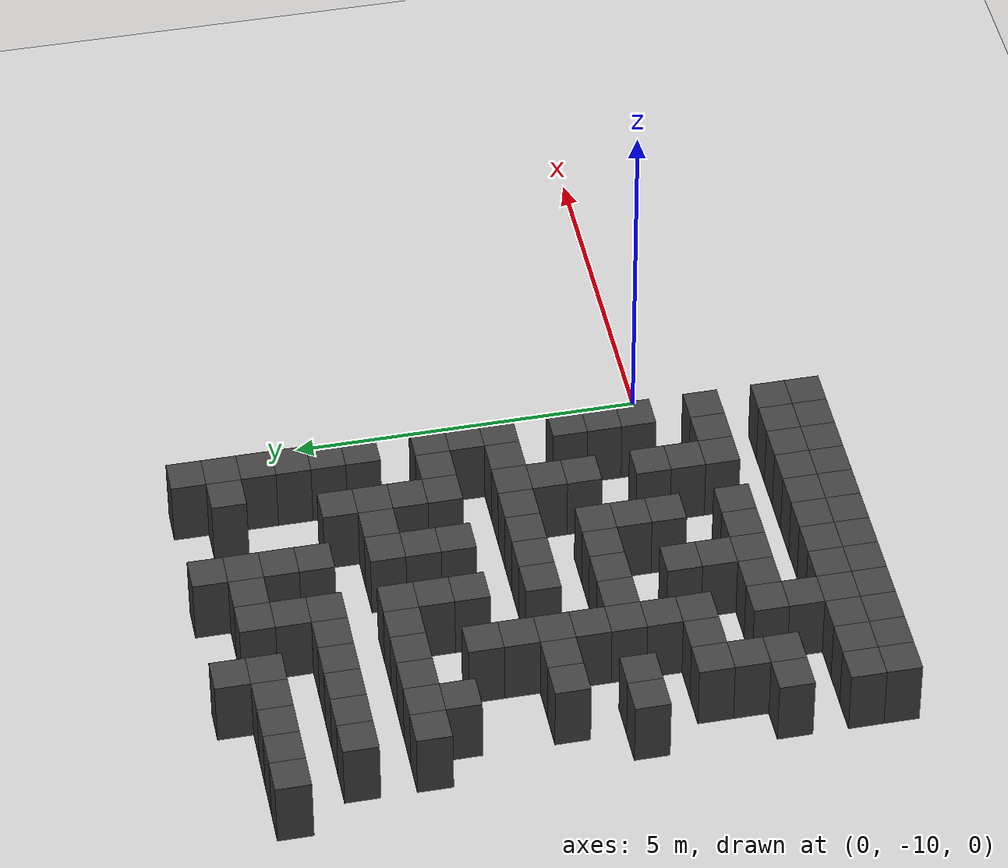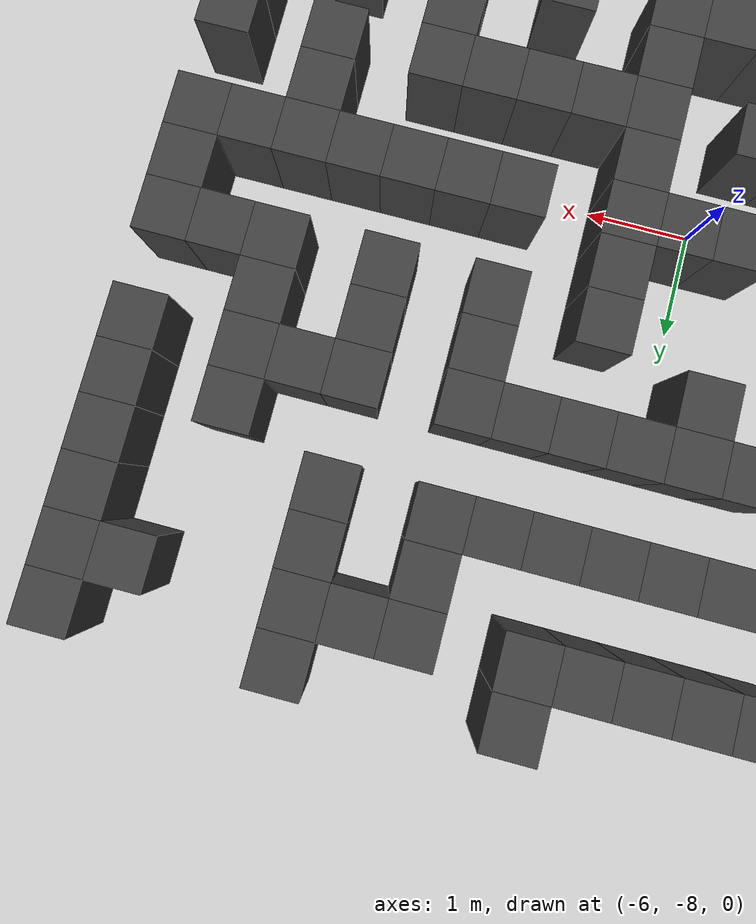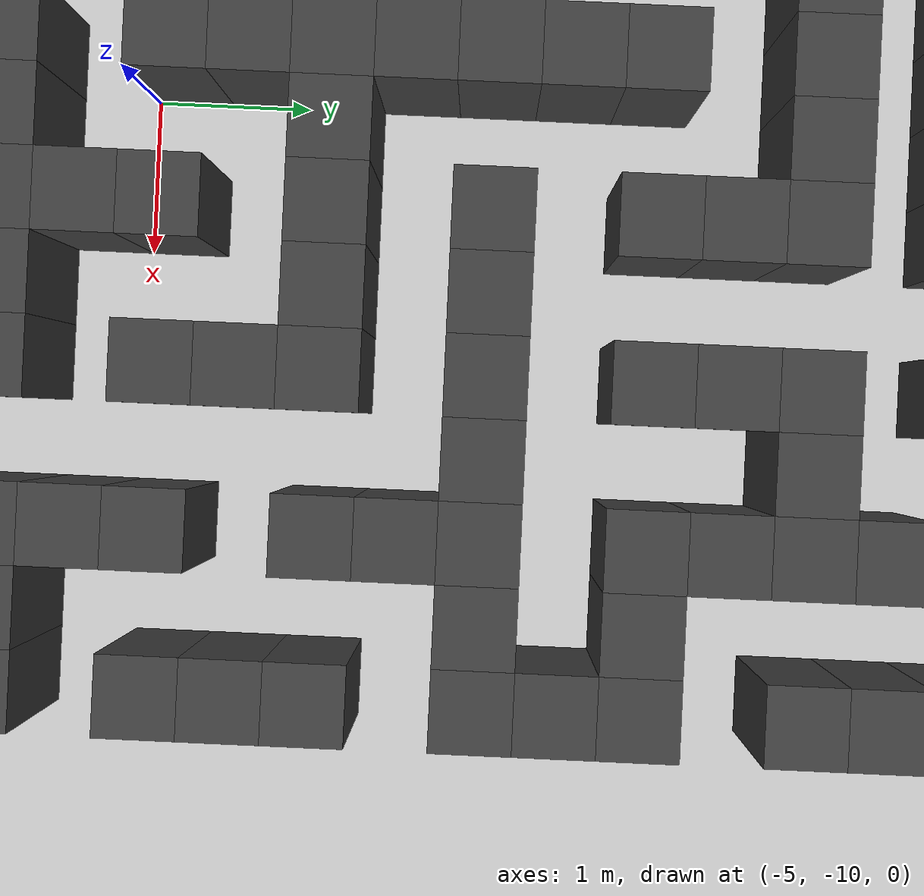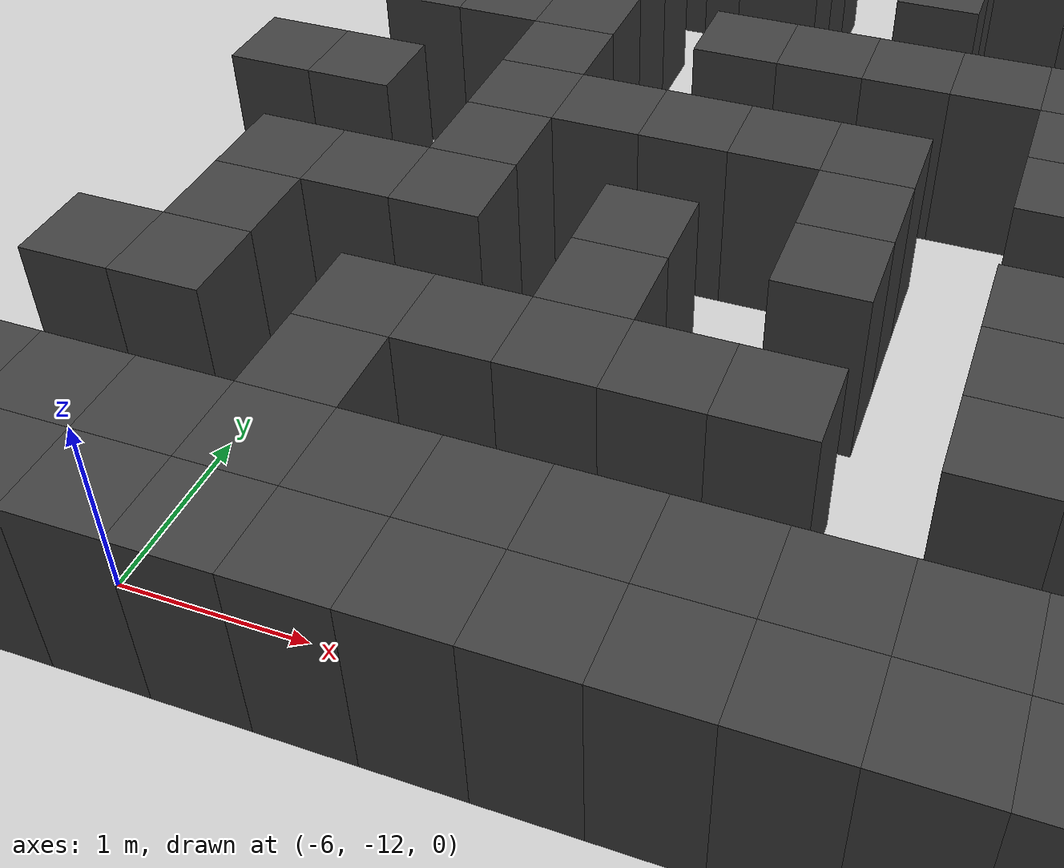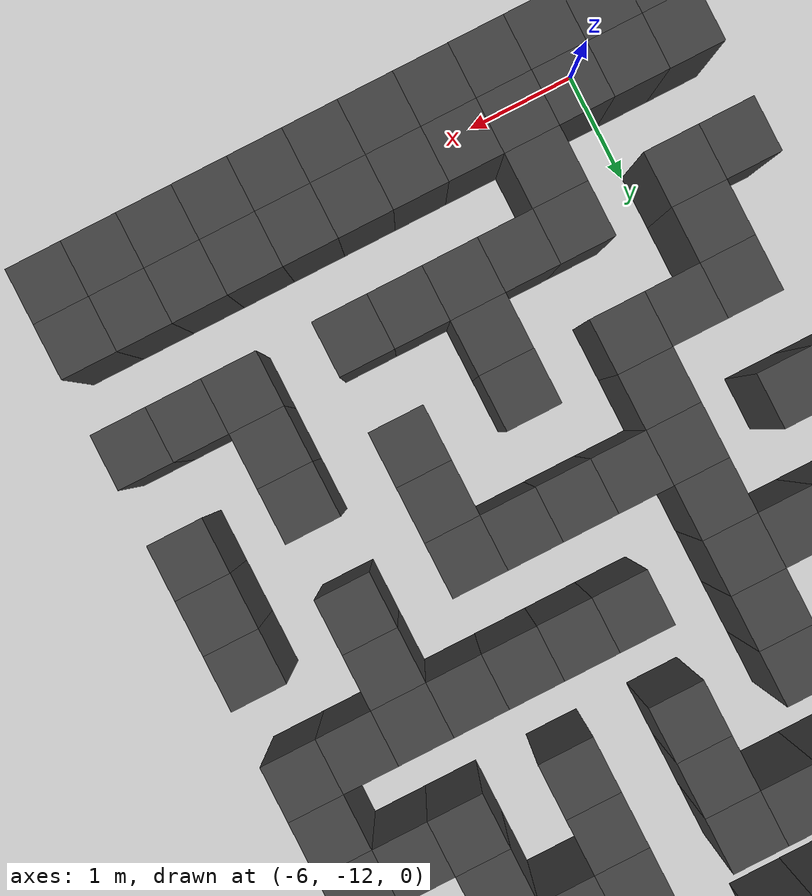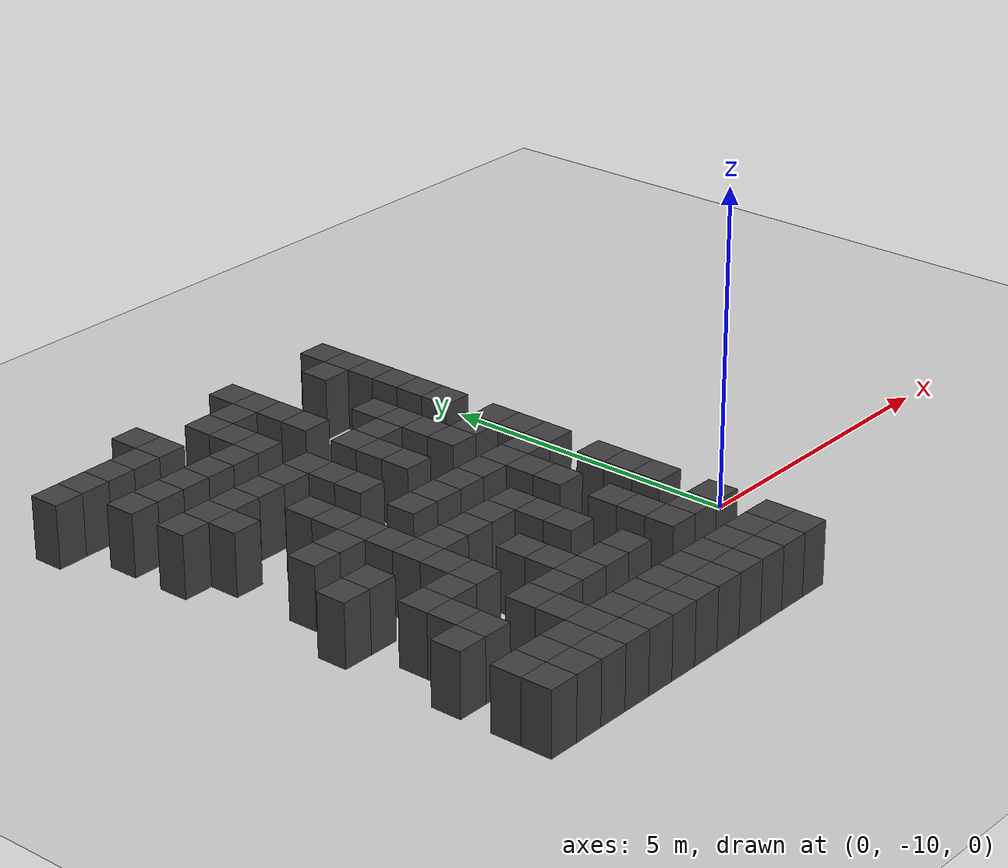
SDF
<sdf version="1.7">
 <world name="map_18228">
  <model name="ground_plane">
   <static>true</static>
   <link name="link">
    <collision name="collision">
     <geometry><plane><normal>0 0 1</normal><size>200 200</size></plane></geometry>
    </collision>
    <visual name="visual">
     <geometry><plane><normal>0 0 1</normal><size>200 200</size></plane></geometry>
     <material><ambient>0.8 0.8 0.8 1</ambient><diffuse>0.8 0.8 0.8 1</diffuse></material>
    </visual>
   </link>
  </model>
  <model name="maze_environment">
   <static>true</static>
   <link name="wall_787">
    <pose>-5.250 -3.250 0.500 0 0 0</pose>
    <collision name="col"><geometry><box><size>0.5 0.5 1.0</size></box></geometry></collision>
    <visual name="vis">
     <geometry><box><size>0.5 0.5 1.0</size></box></geometry>
     <material><ambient>0.15 0.15 0.15 1</ambient><diffuse>0.25 0.25 0.25 1</diffuse></material>
    </visual>
   </link>
   <link name="wall_788">
    <pose>-3.250 -3.250 0.500 0 0 0</pose>
    <collision name="col"><geometry><box><size>0.5 0.5 1.0</size></box></geometry></collision>
    <visual name="vis">
     <geometry><box><size>0.5 0.5 1.0</size></box></geometry>
     <material><ambient>0.15 0.15 0.15 1</ambient><diffuse>0.25 0.25 0.25 1</diffuse></material>
    </visual>
   </link>
   <link name="wall_789">
    <pose>-1.250 -3.250 0.500 0 0 0</pose>
    <collision name="col"><geometry><box><size>0.5 0.5 1.0</size></box></geometry></collision>
    <visual name="vis">
     <geometry><box><size>0.5 0.5 1.0</size></box></geometry>
     <material><ambient>0.15 0.15 0.15 1</ambient><diffuse>0.25 0.25 0.25 1</diffuse></material>
    </visual>
   </link>
   <link name="wall_804">
    <pose>-7.250 -3.750 0.500 0 0 0</pose>
    <collision name="col"><geometry><box><size>0.5 0.5 1.0</size></box></geometry></collision>
    <visual name="vis">
     <geometry><box><size>0.5 0.5 1.0</size></box></geometry>
     <material><ambient>0.15 0.15 0.15 1</ambient><diffuse>0.25 0.25 0.25 1</diffuse></material>
    </visual>
   </link>
   <link name="wall_805">
    <pose>-6.750 -3.750 0.500 0 0 0</pose>
    <collision name="col"><geometry><box><size>0.5 0.5 1.0</size></box></geometry></collision>
    <visual name="vis">
     <geometry><box><size>0.5 0.5 1.0</size></box></geometry>
     <material><ambient>0.15 0.15 0.15 1</ambient><diffuse>0.25 0.25 0.25 1</diffuse></material>
    </visual>
   </link>
   <link name="wall_806">
    <pose>-6.250 -3.750 0.500 0 0 0</pose>
    <collision name="col"><geometry><box><size>0.5 0.5 1.0</size></box></geometry></collision>
    <visual name="vis">
     <geometry><box><size>0.5 0.5 1.0</size></box></geometry>
     <material><ambient>0.15 0.15 0.15 1</ambient><diffuse>0.25 0.25 0.25 1</diffuse></material>
    </visual>
   </link>
   <link name="wall_807">
    <pose>-5.750 -3.750 0.500 0 0 0</pose>
    <collision name="col"><geometry><box><size>0.5 0.5 1.0</size></box></geometry></collision>
    <visual name="vis">
     <geometry><box><size>0.5 0.5 1.0</size></box></geometry>
     <material><ambient>0.15 0.15 0.15 1</ambient><diffuse>0.25 0.25 0.25 1</diffuse></material>
    </visual>
   </link>
   <link name="wall_808">
    <pose>-5.250 -3.750 0.500 0 0 0</pose>
    <collision name="col"><geometry><box><size>0.5 0.5 1.0</size></box></geometry></collision>
    <visual name="vis">
     <geometry><box><size>0.5 0.5 1.0</size></box></geometry>
     <material><ambient>0.15 0.15 0.15 1</ambient><diffuse>0.25 0.25 0.25 1</diffuse></material>
    </visual>
   </link>
   <link name="wall_809">
    <pose>-4.250 -3.750 0.500 0 0 0</pose>
    <collision name="col"><geometry><box><size>0.5 0.5 1.0</size></box></geometry></collision>
    <visual name="vis">
     <geometry><box><size>0.5 0.5 1.0</size></box></geometry>
     <material><ambient>0.15 0.15 0.15 1</ambient><diffuse>0.25 0.25 0.25 1</diffuse></material>
    </visual>
   </link>
   <link name="wall_810">
    <pose>-3.750 -3.750 0.500 0 0 0</pose>
    <collision name="col"><geometry><box><size>0.5 0.5 1.0</size></box></geometry></collision>
    <visual name="vis">
     <geometry><box><size>0.5 0.5 1.0</size></box></geometry>
     <material><ambient>0.15 0.15 0.15 1</ambient><diffuse>0.25 0.25 0.25 1</diffuse></material>
    </visual>
   </link>
   <link name="wall_811">
    <pose>-3.250 -3.750 0.500 0 0 0</pose>
    <collision name="col"><geometry><box><size>0.5 0.5 1.0</size></box></geometry></collision>
    <visual name="vis">
     <geometry><box><size>0.5 0.5 1.0</size></box></geometry>
     <material><ambient>0.15 0.15 0.15 1</ambient><diffuse>0.25 0.25 0.25 1</diffuse></material>
    </visual>
   </link>
   <link name="wall_812">
    <pose>-1.750 -3.750 0.500 0 0 0</pose>
    <collision name="col"><geometry><box><size>0.5 0.5 1.0</size></box></geometry></collision>
    <visual name="vis">
     <geometry><box><size>0.5 0.5 1.0</size></box></geometry>
     <material><ambient>0.15 0.15 0.15 1</ambient><diffuse>0.25 0.25 0.25 1</diffuse></material>
    </visual>
   </link>
   <link name="wall_813">
    <pose>-1.250 -3.750 0.500 0 0 0</pose>
    <collision name="col"><geometry><box><size>0.5 0.5 1.0</size></box></geometry></collision>
    <visual name="vis">
     <geometry><box><size>0.5 0.5 1.0</size></box></geometry>
     <material><ambient>0.15 0.15 0.15 1</ambient><diffuse>0.25 0.25 0.25 1</diffuse></material>
    </visual>
   </link>
   <link name="wall_838">
    <pose>-4.250 -4.250 0.500 0 0 0</pose>
    <collision name="col"><geometry><box><size>0.5 0.5 1.0</size></box></geometry></collision>
    <visual name="vis">
     <geometry><box><size>0.5 0.5 1.0</size></box></geometry>
     <material><ambient>0.15 0.15 0.15 1</ambient><diffuse>0.25 0.25 0.25 1</diffuse></material>
    </visual>
   </link>
   <link name="wall_839">
    <pose>-3.250 -4.250 0.500 0 0 0</pose>
    <collision name="col"><geometry><box><size>0.5 0.5 1.0</size></box></geometry></collision>
    <visual name="vis">
     <geometry><box><size>0.5 0.5 1.0</size></box></geometry>
     <material><ambient>0.15 0.15 0.15 1</ambient><diffuse>0.25 0.25 0.25 1</diffuse></material>
    </visual>
   </link>
   <link name="wall_840">
    <pose>-1.250 -4.250 0.500 0 0 0</pose>
    <collision name="col"><geometry><box><size>0.5 0.5 1.0</size></box></geometry></collision>
    <visual name="vis">
     <geometry><box><size>0.5 0.5 1.0</size></box></geometry>
     <material><ambient>0.15 0.15 0.15 1</ambient><diffuse>0.25 0.25 0.25 1</diffuse></material>
    </visual>
   </link>
   <link name="wall_854">
    <pose>-6.750 -4.750 0.500 0 0 0</pose>
    <collision name="col"><geometry><box><size>0.5 0.5 1.0</size></box></geometry></collision>
    <visual name="vis">
     <geometry><box><size>0.5 0.5 1.0</size></box></geometry>
     <material><ambient>0.15 0.15 0.15 1</ambient><diffuse>0.25 0.25 0.25 1</diffuse></material>
    </visual>
   </link>
   <link name="wall_855">
    <pose>-6.250 -4.750 0.500 0 0 0</pose>
    <collision name="col"><geometry><box><size>0.5 0.5 1.0</size></box></geometry></collision>
    <visual name="vis">
     <geometry><box><size>0.5 0.5 1.0</size></box></geometry>
     <material><ambient>0.15 0.15 0.15 1</ambient><diffuse>0.25 0.25 0.25 1</diffuse></material>
    </visual>
   </link>
   <link name="wall_856">
    <pose>-5.750 -4.750 0.500 0 0 0</pose>
    <collision name="col"><geometry><box><size>0.5 0.5 1.0</size></box></geometry></collision>
    <visual name="vis">
     <geometry><box><size>0.5 0.5 1.0</size></box></geometry>
     <material><ambient>0.15 0.15 0.15 1</ambient><diffuse>0.25 0.25 0.25 1</diffuse></material>
    </visual>
   </link>
   <link name="wall_857">
    <pose>-5.250 -4.750 0.500 0 0 0</pose>
    <collision name="col"><geometry><box><size>0.5 0.5 1.0</size></box></geometry></collision>
    <visual name="vis">
     <geometry><box><size>0.5 0.5 1.0</size></box></geometry>
     <material><ambient>0.15 0.15 0.15 1</ambient><diffuse>0.25 0.25 0.25 1</diffuse></material>
    </visual>
   </link>
   <link name="wall_858">
    <pose>-4.750 -4.750 0.500 0 0 0</pose>
    <collision name="col"><geometry><box><size>0.5 0.5 1.0</size></box></geometry></collision>
    <visual name="vis">
     <geometry><box><size>0.5 0.5 1.0</size></box></geometry>
     <material><ambient>0.15 0.15 0.15 1</ambient><diffuse>0.25 0.25 0.25 1</diffuse></material>
    </visual>
   </link>
   <link name="wall_859">
    <pose>-4.250 -4.750 0.500 0 0 0</pose>
    <collision name="col"><geometry><box><size>0.5 0.5 1.0</size></box></geometry></collision>
    <visual name="vis">
     <geometry><box><size>0.5 0.5 1.0</size></box></geometry>
     <material><ambient>0.15 0.15 0.15 1</ambient><diffuse>0.25 0.25 0.25 1</diffuse></material>
    </visual>
   </link>
   <link name="wall_860">
    <pose>-3.250 -4.750 0.500 0 0 0</pose>
    <collision name="col"><geometry><box><size>0.5 0.5 1.0</size></box></geometry></collision>
    <visual name="vis">
     <geometry><box><size>0.5 0.5 1.0</size></box></geometry>
     <material><ambient>0.15 0.15 0.15 1</ambient><diffuse>0.25 0.25 0.25 1</diffuse></material>
    </visual>
   </link>
   <link name="wall_861">
    <pose>-1.250 -4.750 0.500 0 0 0</pose>
    <collision name="col"><geometry><box><size>0.5 0.5 1.0</size></box></geometry></collision>
    <visual name="vis">
     <geometry><box><size>0.5 0.5 1.0</size></box></geometry>
     <material><ambient>0.15 0.15 0.15 1</ambient><diffuse>0.25 0.25 0.25 1</diffuse></material>
    </visual>
   </link>
   <link name="wall_885">
    <pose>-2.250 -5.250 0.500 0 0 0</pose>
    <collision name="col"><geometry><box><size>0.5 0.5 1.0</size></box></geometry></collision>
    <visual name="vis">
     <geometry><box><size>0.5 0.5 1.0</size></box></geometry>
     <material><ambient>0.15 0.15 0.15 1</ambient><diffuse>0.25 0.25 0.25 1</diffuse></material>
    </visual>
   </link>
   <link name="wall_886">
    <pose>-1.250 -5.250 0.500 0 0 0</pose>
    <collision name="col"><geometry><box><size>0.5 0.5 1.0</size></box></geometry></collision>
    <visual name="vis">
     <geometry><box><size>0.5 0.5 1.0</size></box></geometry>
     <material><ambient>0.15 0.15 0.15 1</ambient><diffuse>0.25 0.25 0.25 1</diffuse></material>
    </visual>
   </link>
   <link name="wall_906">
    <pose>-6.750 -5.750 0.500 0 0 0</pose>
    <collision name="col"><geometry><box><size>0.5 0.5 1.0</size></box></geometry></collision>
    <visual name="vis">
     <geometry><box><size>0.5 0.5 1.0</size></box></geometry>
     <material><ambient>0.15 0.15 0.15 1</ambient><diffuse>0.25 0.25 0.25 1</diffuse></material>
    </visual>
   </link>
   <link name="wall_907">
    <pose>-6.250 -5.750 0.500 0 0 0</pose>
    <collision name="col"><geometry><box><size>0.5 0.5 1.0</size></box></geometry></collision>
    <visual name="vis">
     <geometry><box><size>0.5 0.5 1.0</size></box></geometry>
     <material><ambient>0.15 0.15 0.15 1</ambient><diffuse>0.25 0.25 0.25 1</diffuse></material>
    </visual>
   </link>
   <link name="wall_908">
    <pose>-5.750 -5.750 0.500 0 0 0</pose>
    <collision name="col"><geometry><box><size>0.5 0.5 1.0</size></box></geometry></collision>
    <visual name="vis">
     <geometry><box><size>0.5 0.5 1.0</size></box></geometry>
     <material><ambient>0.15 0.15 0.15 1</ambient><diffuse>0.25 0.25 0.25 1</diffuse></material>
    </visual>
   </link>
   <link name="wall_909">
    <pose>-5.250 -5.750 0.500 0 0 0</pose>
    <collision name="col"><geometry><box><size>0.5 0.5 1.0</size></box></geometry></collision>
    <visual name="vis">
     <geometry><box><size>0.5 0.5 1.0</size></box></geometry>
     <material><ambient>0.15 0.15 0.15 1</ambient><diffuse>0.25 0.25 0.25 1</diffuse></material>
    </visual>
   </link>
   <link name="wall_910">
    <pose>-4.750 -5.750 0.500 0 0 0</pose>
    <collision name="col"><geometry><box><size>0.5 0.5 1.0</size></box></geometry></collision>
    <visual name="vis">
     <geometry><box><size>0.5 0.5 1.0</size></box></geometry>
     <material><ambient>0.15 0.15 0.15 1</ambient><diffuse>0.25 0.25 0.25 1</diffuse></material>
    </visual>
   </link>
   <link name="wall_911">
    <pose>-4.250 -5.750 0.500 0 0 0</pose>
    <collision name="col"><geometry><box><size>0.5 0.5 1.0</size></box></geometry></collision>
    <visual name="vis">
     <geometry><box><size>0.5 0.5 1.0</size></box></geometry>
     <material><ambient>0.15 0.15 0.15 1</ambient><diffuse>0.25 0.25 0.25 1</diffuse></material>
    </visual>
   </link>
   <link name="wall_912">
    <pose>-3.250 -5.750 0.500 0 0 0</pose>
    <collision name="col"><geometry><box><size>0.5 0.5 1.0</size></box></geometry></collision>
    <visual name="vis">
     <geometry><box><size>0.5 0.5 1.0</size></box></geometry>
     <material><ambient>0.15 0.15 0.15 1</ambient><diffuse>0.25 0.25 0.25 1</diffuse></material>
    </visual>
   </link>
   <link name="wall_913">
    <pose>-2.750 -5.750 0.500 0 0 0</pose>
    <collision name="col"><geometry><box><size>0.5 0.5 1.0</size></box></geometry></collision>
    <visual name="vis">
     <geometry><box><size>0.5 0.5 1.0</size></box></geometry>
     <material><ambient>0.15 0.15 0.15 1</ambient><diffuse>0.25 0.25 0.25 1</diffuse></material>
    </visual>
   </link>
   <link name="wall_914">
    <pose>-2.250 -5.750 0.500 0 0 0</pose>
    <collision name="col"><geometry><box><size>0.5 0.5 1.0</size></box></geometry></collision>
    <visual name="vis">
     <geometry><box><size>0.5 0.5 1.0</size></box></geometry>
     <material><ambient>0.15 0.15 0.15 1</ambient><diffuse>0.25 0.25 0.25 1</diffuse></material>
    </visual>
   </link>
   <link name="wall_915">
    <pose>-1.250 -5.750 0.500 0 0 0</pose>
    <collision name="col"><geometry><box><size>0.5 0.5 1.0</size></box></geometry></collision>
    <visual name="vis">
     <geometry><box><size>0.5 0.5 1.0</size></box></geometry>
     <material><ambient>0.15 0.15 0.15 1</ambient><diffuse>0.25 0.25 0.25 1</diffuse></material>
    </visual>
   </link>
   <link name="wall_937">
    <pose>-6.250 -6.250 0.500 0 0 0</pose>
    <collision name="col"><geometry><box><size>0.5 0.5 1.0</size></box></geometry></collision>
    <visual name="vis">
     <geometry><box><size>0.5 0.5 1.0</size></box></geometry>
     <material><ambient>0.15 0.15 0.15 1</ambient><diffuse>0.25 0.25 0.25 1</diffuse></material>
    </visual>
   </link>
   <link name="wall_938">
    <pose>-4.250 -6.250 0.500 0 0 0</pose>
    <collision name="col"><geometry><box><size>0.5 0.5 1.0</size></box></geometry></collision>
    <visual name="vis">
     <geometry><box><size>0.5 0.5 1.0</size></box></geometry>
     <material><ambient>0.15 0.15 0.15 1</ambient><diffuse>0.25 0.25 0.25 1</diffuse></material>
    </visual>
   </link>
   <link name="wall_939">
    <pose>-3.250 -6.250 0.500 0 0 0</pose>
    <collision name="col"><geometry><box><size>0.5 0.5 1.0</size></box></geometry></collision>
    <visual name="vis">
     <geometry><box><size>0.5 0.5 1.0</size></box></geometry>
     <material><ambient>0.15 0.15 0.15 1</ambient><diffuse>0.25 0.25 0.25 1</diffuse></material>
    </visual>
   </link>
   <link name="wall_940">
    <pose>-2.250 -6.250 0.500 0 0 0</pose>
    <collision name="col"><geometry><box><size>0.5 0.5 1.0</size></box></geometry></collision>
    <visual name="vis">
     <geometry><box><size>0.5 0.5 1.0</size></box></geometry>
     <material><ambient>0.15 0.15 0.15 1</ambient><diffuse>0.25 0.25 0.25 1</diffuse></material>
    </visual>
   </link>
   <link name="wall_958">
    <pose>-5.250 -6.750 0.500 0 0 0</pose>
    <collision name="col"><geometry><box><size>0.5 0.5 1.0</size></box></geometry></collision>
    <visual name="vis">
     <geometry><box><size>0.5 0.5 1.0</size></box></geometry>
     <material><ambient>0.15 0.15 0.15 1</ambient><diffuse>0.25 0.25 0.25 1</diffuse></material>
    </visual>
   </link>
   <link name="wall_959">
    <pose>-4.250 -6.750 0.500 0 0 0</pose>
    <collision name="col"><geometry><box><size>0.5 0.5 1.0</size></box></geometry></collision>
    <visual name="vis">
     <geometry><box><size>0.5 0.5 1.0</size></box></geometry>
     <material><ambient>0.15 0.15 0.15 1</ambient><diffuse>0.25 0.25 0.25 1</diffuse></material>
    </visual>
   </link>
   <link name="wall_960">
    <pose>-3.250 -6.750 0.500 0 0 0</pose>
    <collision name="col"><geometry><box><size>0.5 0.5 1.0</size></box></geometry></collision>
    <visual name="vis">
     <geometry><box><size>0.5 0.5 1.0</size></box></geometry>
     <material><ambient>0.15 0.15 0.15 1</ambient><diffuse>0.25 0.25 0.25 1</diffuse></material>
    </visual>
   </link>
   <link name="wall_961">
    <pose>-2.250 -6.750 0.500 0 0 0</pose>
    <collision name="col"><geometry><box><size>0.5 0.5 1.0</size></box></geometry></collision>
    <visual name="vis">
     <geometry><box><size>0.5 0.5 1.0</size></box></geometry>
     <material><ambient>0.15 0.15 0.15 1</ambient><diffuse>0.25 0.25 0.25 1</diffuse></material>
    </visual>
   </link>
   <link name="wall_962">
    <pose>-1.750 -6.750 0.500 0 0 0</pose>
    <collision name="col"><geometry><box><size>0.5 0.5 1.0</size></box></geometry></collision>
    <visual name="vis">
     <geometry><box><size>0.5 0.5 1.0</size></box></geometry>
     <material><ambient>0.15 0.15 0.15 1</ambient><diffuse>0.25 0.25 0.25 1</diffuse></material>
    </visual>
   </link>
   <link name="wall_963">
    <pose>-1.250 -6.750 0.500 0 0 0</pose>
    <collision name="col"><geometry><box><size>0.5 0.5 1.0</size></box></geometry></collision>
    <visual name="vis">
     <geometry><box><size>0.5 0.5 1.0</size></box></geometry>
     <material><ambient>0.15 0.15 0.15 1</ambient><diffuse>0.25 0.25 0.25 1</diffuse></material>
    </visual>
   </link>
   <link name="wall_987">
    <pose>-5.250 -7.250 0.500 0 0 0</pose>
    <collision name="col"><geometry><box><size>0.5 0.5 1.0</size></box></geometry></collision>
    <visual name="vis">
     <geometry><box><size>0.5 0.5 1.0</size></box></geometry>
     <material><ambient>0.15 0.15 0.15 1</ambient><diffuse>0.25 0.25 0.25 1</diffuse></material>
    </visual>
   </link>
   <link name="wall_988">
    <pose>-1.250 -7.250 0.500 0 0 0</pose>
    <collision name="col"><geometry><box><size>0.5 0.5 1.0</size></box></geometry></collision>
    <visual name="vis">
     <geometry><box><size>0.5 0.5 1.0</size></box></geometry>
     <material><ambient>0.15 0.15 0.15 1</ambient><diffuse>0.25 0.25 0.25 1</diffuse></material>
    </visual>
   </link>
   <link name="wall_1005">
    <pose>-6.250 -7.750 0.500 0 0 0</pose>
    <collision name="col"><geometry><box><size>0.5 0.5 1.0</size></box></geometry></collision>
    <visual name="vis">
     <geometry><box><size>0.5 0.5 1.0</size></box></geometry>
     <material><ambient>0.15 0.15 0.15 1</ambient><diffuse>0.25 0.25 0.25 1</diffuse></material>
    </visual>
   </link>
   <link name="wall_1006">
    <pose>-5.750 -7.750 0.500 0 0 0</pose>
    <collision name="col"><geometry><box><size>0.5 0.5 1.0</size></box></geometry></collision>
    <visual name="vis">
     <geometry><box><size>0.5 0.5 1.0</size></box></geometry>
     <material><ambient>0.15 0.15 0.15 1</ambient><diffuse>0.25 0.25 0.25 1</diffuse></material>
    </visual>
   </link>
   <link name="wall_1007">
    <pose>-5.250 -7.750 0.500 0 0 0</pose>
    <collision name="col"><geometry><box><size>0.5 0.5 1.0</size></box></geometry></collision>
    <visual name="vis">
     <geometry><box><size>0.5 0.5 1.0</size></box></geometry>
     <material><ambient>0.15 0.15 0.15 1</ambient><diffuse>0.25 0.25 0.25 1</diffuse></material>
    </visual>
   </link>
   <link name="wall_1008">
    <pose>-4.250 -7.750 0.500 0 0 0</pose>
    <collision name="col"><geometry><box><size>0.5 0.5 1.0</size></box></geometry></collision>
    <visual name="vis">
     <geometry><box><size>0.5 0.5 1.0</size></box></geometry>
     <material><ambient>0.15 0.15 0.15 1</ambient><diffuse>0.25 0.25 0.25 1</diffuse></material>
    </visual>
   </link>
   <link name="wall_1009">
    <pose>-3.750 -7.750 0.500 0 0 0</pose>
    <collision name="col"><geometry><box><size>0.5 0.5 1.0</size></box></geometry></collision>
    <visual name="vis">
     <geometry><box><size>0.5 0.5 1.0</size></box></geometry>
     <material><ambient>0.15 0.15 0.15 1</ambient><diffuse>0.25 0.25 0.25 1</diffuse></material>
    </visual>
   </link>
   <link name="wall_1010">
    <pose>-3.250 -7.750 0.500 0 0 0</pose>
    <collision name="col"><geometry><box><size>0.5 0.5 1.0</size></box></geometry></collision>
    <visual name="vis">
     <geometry><box><size>0.5 0.5 1.0</size></box></geometry>
     <material><ambient>0.15 0.15 0.15 1</ambient><diffuse>0.25 0.25 0.25 1</diffuse></material>
    </visual>
   </link>
   <link name="wall_1011">
    <pose>-2.750 -7.750 0.500 0 0 0</pose>
    <collision name="col"><geometry><box><size>0.5 0.5 1.0</size></box></geometry></collision>
    <visual name="vis">
     <geometry><box><size>0.5 0.5 1.0</size></box></geometry>
     <material><ambient>0.15 0.15 0.15 1</ambient><diffuse>0.25 0.25 0.25 1</diffuse></material>
    </visual>
   </link>
   <link name="wall_1012">
    <pose>-2.250 -7.750 0.500 0 0 0</pose>
    <collision name="col"><geometry><box><size>0.5 0.5 1.0</size></box></geometry></collision>
    <visual name="vis">
     <geometry><box><size>0.5 0.5 1.0</size></box></geometry>
     <material><ambient>0.15 0.15 0.15 1</ambient><diffuse>0.25 0.25 0.25 1</diffuse></material>
    </visual>
   </link>
   <link name="wall_1013">
    <pose>-1.750 -7.750 0.500 0 0 0</pose>
    <collision name="col"><geometry><box><size>0.5 0.5 1.0</size></box></geometry></collision>
    <visual name="vis">
     <geometry><box><size>0.5 0.5 1.0</size></box></geometry>
     <material><ambient>0.15 0.15 0.15 1</ambient><diffuse>0.25 0.25 0.25 1</diffuse></material>
    </visual>
   </link>
   <link name="wall_1014">
    <pose>-1.250 -7.750 0.500 0 0 0</pose>
    <collision name="col"><geometry><box><size>0.5 0.5 1.0</size></box></geometry></collision>
    <visual name="vis">
     <geometry><box><size>0.5 0.5 1.0</size></box></geometry>
     <material><ambient>0.15 0.15 0.15 1</ambient><diffuse>0.25 0.25 0.25 1</diffuse></material>
    </visual>
   </link>
   <link name="wall_1037">
    <pose>-5.250 -8.250 0.500 0 0 0</pose>
    <collision name="col"><geometry><box><size>0.5 0.5 1.0</size></box></geometry></collision>
    <visual name="vis">
     <geometry><box><size>0.5 0.5 1.0</size></box></geometry>
     <material><ambient>0.15 0.15 0.15 1</ambient><diffuse>0.25 0.25 0.25 1</diffuse></material>
    </visual>
   </link>
   <link name="wall_1038">
    <pose>-2.250 -8.250 0.500 0 0 0</pose>
    <collision name="col"><geometry><box><size>0.5 0.5 1.0</size></box></geometry></collision>
    <visual name="vis">
     <geometry><box><size>0.5 0.5 1.0</size></box></geometry>
     <material><ambient>0.15 0.15 0.15 1</ambient><diffuse>0.25 0.25 0.25 1</diffuse></material>
    </visual>
   </link>
   <link name="wall_1056">
    <pose>-6.750 -8.750 0.500 0 0 0</pose>
    <collision name="col"><geometry><box><size>0.5 0.5 1.0</size></box></geometry></collision>
    <visual name="vis">
     <geometry><box><size>0.5 0.5 1.0</size></box></geometry>
     <material><ambient>0.15 0.15 0.15 1</ambient><diffuse>0.25 0.25 0.25 1</diffuse></material>
    </visual>
   </link>
   <link name="wall_1057">
    <pose>-6.250 -8.750 0.500 0 0 0</pose>
    <collision name="col"><geometry><box><size>0.5 0.5 1.0</size></box></geometry></collision>
    <visual name="vis">
     <geometry><box><size>0.5 0.5 1.0</size></box></geometry>
     <material><ambient>0.15 0.15 0.15 1</ambient><diffuse>0.25 0.25 0.25 1</diffuse></material>
    </visual>
   </link>
   <link name="wall_1058">
    <pose>-5.250 -8.750 0.500 0 0 0</pose>
    <collision name="col"><geometry><box><size>0.5 0.5 1.0</size></box></geometry></collision>
    <visual name="vis">
     <geometry><box><size>0.5 0.5 1.0</size></box></geometry>
     <material><ambient>0.15 0.15 0.15 1</ambient><diffuse>0.25 0.25 0.25 1</diffuse></material>
    </visual>
   </link>
   <link name="wall_1059">
    <pose>-4.750 -8.750 0.500 0 0 0</pose>
    <collision name="col"><geometry><box><size>0.5 0.5 1.0</size></box></geometry></collision>
    <visual name="vis">
     <geometry><box><size>0.5 0.5 1.0</size></box></geometry>
     <material><ambient>0.15 0.15 0.15 1</ambient><diffuse>0.25 0.25 0.25 1</diffuse></material>
    </visual>
   </link>
   <link name="wall_1060">
    <pose>-4.250 -8.750 0.500 0 0 0</pose>
    <collision name="col"><geometry><box><size>0.5 0.5 1.0</size></box></geometry></collision>
    <visual name="vis">
     <geometry><box><size>0.5 0.5 1.0</size></box></geometry>
     <material><ambient>0.15 0.15 0.15 1</ambient><diffuse>0.25 0.25 0.25 1</diffuse></material>
    </visual>
   </link>
   <link name="wall_1061">
    <pose>-3.750 -8.750 0.500 0 0 0</pose>
    <collision name="col"><geometry><box><size>0.5 0.5 1.0</size></box></geometry></collision>
    <visual name="vis">
     <geometry><box><size>0.5 0.5 1.0</size></box></geometry>
     <material><ambient>0.15 0.15 0.15 1</ambient><diffuse>0.25 0.25 0.25 1</diffuse></material>
    </visual>
   </link>
   <link name="wall_1062">
    <pose>-3.250 -8.750 0.500 0 0 0</pose>
    <collision name="col"><geometry><box><size>0.5 0.5 1.0</size></box></geometry></collision>
    <visual name="vis">
     <geometry><box><size>0.5 0.5 1.0</size></box></geometry>
     <material><ambient>0.15 0.15 0.15 1</ambient><diffuse>0.25 0.25 0.25 1</diffuse></material>
    </visual>
   </link>
   <link name="wall_1063">
    <pose>-2.250 -8.750 0.500 0 0 0</pose>
    <collision name="col"><geometry><box><size>0.5 0.5 1.0</size></box></geometry></collision>
    <visual name="vis">
     <geometry><box><size>0.5 0.5 1.0</size></box></geometry>
     <material><ambient>0.15 0.15 0.15 1</ambient><diffuse>0.25 0.25 0.25 1</diffuse></material>
    </visual>
   </link>
   <link name="wall_1064">
    <pose>-1.250 -8.750 0.500 0 0 0</pose>
    <collision name="col"><geometry><box><size>0.5 0.5 1.0</size></box></geometry></collision>
    <visual name="vis">
     <geometry><box><size>0.5 0.5 1.0</size></box></geometry>
     <material><ambient>0.15 0.15 0.15 1</ambient><diffuse>0.25 0.25 0.25 1</diffuse></material>
    </visual>
   </link>
   <link name="wall_1087">
    <pose>-5.250 -9.250 0.500 0 0 0</pose>
    <collision name="col"><geometry><box><size>0.5 0.5 1.0</size></box></geometry></collision>
    <visual name="vis">
     <geometry><box><size>0.5 0.5 1.0</size></box></geometry>
     <material><ambient>0.15 0.15 0.15 1</ambient><diffuse>0.25 0.25 0.25 1</diffuse></material>
    </visual>
   </link>
   <link name="wall_1088">
    <pose>-3.250 -9.250 0.500 0 0 0</pose>
    <collision name="col"><geometry><box><size>0.5 0.5 1.0</size></box></geometry></collision>
    <visual name="vis">
     <geometry><box><size>0.5 0.5 1.0</size></box></geometry>
     <material><ambient>0.15 0.15 0.15 1</ambient><diffuse>0.25 0.25 0.25 1</diffuse></material>
    </visual>
   </link>
   <link name="wall_1089">
    <pose>-1.250 -9.250 0.500 0 0 0</pose>
    <collision name="col"><geometry><box><size>0.5 0.5 1.0</size></box></geometry></collision>
    <visual name="vis">
     <geometry><box><size>0.5 0.5 1.0</size></box></geometry>
     <material><ambient>0.15 0.15 0.15 1</ambient><diffuse>0.25 0.25 0.25 1</diffuse></material>
    </visual>
   </link>
   <link name="wall_1106">
    <pose>-6.250 -9.750 0.500 0 0 0</pose>
    <collision name="col"><geometry><box><size>0.5 0.5 1.0</size></box></geometry></collision>
    <visual name="vis">
     <geometry><box><size>0.5 0.5 1.0</size></box></geometry>
     <material><ambient>0.15 0.15 0.15 1</ambient><diffuse>0.25 0.25 0.25 1</diffuse></material>
    </visual>
   </link>
   <link name="wall_1107">
    <pose>-5.750 -9.750 0.500 0 0 0</pose>
    <collision name="col"><geometry><box><size>0.5 0.5 1.0</size></box></geometry></collision>
    <visual name="vis">
     <geometry><box><size>0.5 0.5 1.0</size></box></geometry>
     <material><ambient>0.15 0.15 0.15 1</ambient><diffuse>0.25 0.25 0.25 1</diffuse></material>
    </visual>
   </link>
   <link name="wall_1108">
    <pose>-5.250 -9.750 0.500 0 0 0</pose>
    <collision name="col"><geometry><box><size>0.5 0.5 1.0</size></box></geometry></collision>
    <visual name="vis">
     <geometry><box><size>0.5 0.5 1.0</size></box></geometry>
     <material><ambient>0.15 0.15 0.15 1</ambient><diffuse>0.25 0.25 0.25 1</diffuse></material>
    </visual>
   </link>
   <link name="wall_1109">
    <pose>-4.250 -9.750 0.500 0 0 0</pose>
    <collision name="col"><geometry><box><size>0.5 0.5 1.0</size></box></geometry></collision>
    <visual name="vis">
     <geometry><box><size>0.5 0.5 1.0</size></box></geometry>
     <material><ambient>0.15 0.15 0.15 1</ambient><diffuse>0.25 0.25 0.25 1</diffuse></material>
    </visual>
   </link>
   <link name="wall_1110">
    <pose>-3.250 -9.750 0.500 0 0 0</pose>
    <collision name="col"><geometry><box><size>0.5 0.5 1.0</size></box></geometry></collision>
    <visual name="vis">
     <geometry><box><size>0.5 0.5 1.0</size></box></geometry>
     <material><ambient>0.15 0.15 0.15 1</ambient><diffuse>0.25 0.25 0.25 1</diffuse></material>
    </visual>
   </link>
   <link name="wall_1111">
    <pose>-2.250 -9.750 0.500 0 0 0</pose>
    <collision name="col"><geometry><box><size>0.5 0.5 1.0</size></box></geometry></collision>
    <visual name="vis">
     <geometry><box><size>0.5 0.5 1.0</size></box></geometry>
     <material><ambient>0.15 0.15 0.15 1</ambient><diffuse>0.25 0.25 0.25 1</diffuse></material>
    </visual>
   </link>
   <link name="wall_1112">
    <pose>-1.250 -9.750 0.500 0 0 0</pose>
    <collision name="col"><geometry><box><size>0.5 0.5 1.0</size></box></geometry></collision>
    <visual name="vis">
     <geometry><box><size>0.5 0.5 1.0</size></box></geometry>
     <material><ambient>0.15 0.15 0.15 1</ambient><diffuse>0.25 0.25 0.25 1</diffuse></material>
    </visual>
   </link>
   <link name="wall_1137">
    <pose>-6.250 -10.250 0.500 0 0 0</pose>
    <collision name="col"><geometry><box><size>0.5 0.5 1.0</size></box></geometry></collision>
    <visual name="vis">
     <geometry><box><size>0.5 0.5 1.0</size></box></geometry>
     <material><ambient>0.15 0.15 0.15 1</ambient><diffuse>0.25 0.25 0.25 1</diffuse></material>
    </visual>
   </link>
   <link name="wall_1138">
    <pose>-4.250 -10.250 0.500 0 0 0</pose>
    <collision name="col"><geometry><box><size>0.5 0.5 1.0</size></box></geometry></collision>
    <visual name="vis">
     <geometry><box><size>0.5 0.5 1.0</size></box></geometry>
     <material><ambient>0.15 0.15 0.15 1</ambient><diffuse>0.25 0.25 0.25 1</diffuse></material>
    </visual>
   </link>
   <link name="wall_1139">
    <pose>-2.250 -10.250 0.500 0 0 0</pose>
    <collision name="col"><geometry><box><size>0.5 0.5 1.0</size></box></geometry></collision>
    <visual name="vis">
     <geometry><box><size>0.5 0.5 1.0</size></box></geometry>
     <material><ambient>0.15 0.15 0.15 1</ambient><diffuse>0.25 0.25 0.25 1</diffuse></material>
    </visual>
   </link>
   <link name="wall_1156">
    <pose>-6.750 -10.750 0.500 0 0 0</pose>
    <collision name="col"><geometry><box><size>0.5 0.5 1.0</size></box></geometry></collision>
    <visual name="vis">
     <geometry><box><size>0.5 0.5 1.0</size></box></geometry>
     <material><ambient>0.15 0.15 0.15 1</ambient><diffuse>0.25 0.25 0.25 1</diffuse></material>
    </visual>
   </link>
   <link name="wall_1157">
    <pose>-6.250 -10.750 0.500 0 0 0</pose>
    <collision name="col"><geometry><box><size>0.5 0.5 1.0</size></box></geometry></collision>
    <visual name="vis">
     <geometry><box><size>0.5 0.5 1.0</size></box></geometry>
     <material><ambient>0.15 0.15 0.15 1</ambient><diffuse>0.25 0.25 0.25 1</diffuse></material>
    </visual>
   </link>
   <link name="wall_1158">
    <pose>-5.250 -10.750 0.500 0 0 0</pose>
    <collision name="col"><geometry><box><size>0.5 0.5 1.0</size></box></geometry></collision>
    <visual name="vis">
     <geometry><box><size>0.5 0.5 1.0</size></box></geometry>
     <material><ambient>0.15 0.15 0.15 1</ambient><diffuse>0.25 0.25 0.25 1</diffuse></material>
    </visual>
   </link>
   <link name="wall_1159">
    <pose>-4.750 -10.750 0.500 0 0 0</pose>
    <collision name="col"><geometry><box><size>0.5 0.5 1.0</size></box></geometry></collision>
    <visual name="vis">
     <geometry><box><size>0.5 0.5 1.0</size></box></geometry>
     <material><ambient>0.15 0.15 0.15 1</ambient><diffuse>0.25 0.25 0.25 1</diffuse></material>
    </visual>
   </link>
   <link name="wall_1160">
    <pose>-4.250 -10.750 0.500 0 0 0</pose>
    <collision name="col"><geometry><box><size>0.5 0.5 1.0</size></box></geometry></collision>
    <visual name="vis">
     <geometry><box><size>0.5 0.5 1.0</size></box></geometry>
     <material><ambient>0.15 0.15 0.15 1</ambient><diffuse>0.25 0.25 0.25 1</diffuse></material>
    </visual>
   </link>
   <link name="wall_1161">
    <pose>-3.750 -10.750 0.500 0 0 0</pose>
    <collision name="col"><geometry><box><size>0.5 0.5 1.0</size></box></geometry></collision>
    <visual name="vis">
     <geometry><box><size>0.5 0.5 1.0</size></box></geometry>
     <material><ambient>0.15 0.15 0.15 1</ambient><diffuse>0.25 0.25 0.25 1</diffuse></material>
    </visual>
   </link>
   <link name="wall_1162">
    <pose>-3.250 -10.750 0.500 0 0 0</pose>
    <collision name="col"><geometry><box><size>0.5 0.5 1.0</size></box></geometry></collision>
    <visual name="vis">
     <geometry><box><size>0.5 0.5 1.0</size></box></geometry>
     <material><ambient>0.15 0.15 0.15 1</ambient><diffuse>0.25 0.25 0.25 1</diffuse></material>
    </visual>
   </link>
   <link name="wall_1163">
    <pose>-2.250 -10.750 0.500 0 0 0</pose>
    <collision name="col"><geometry><box><size>0.5 0.5 1.0</size></box></geometry></collision>
    <visual name="vis">
     <geometry><box><size>0.5 0.5 1.0</size></box></geometry>
     <material><ambient>0.15 0.15 0.15 1</ambient><diffuse>0.25 0.25 0.25 1</diffuse></material>
    </visual>
   </link>
   <link name="wall_1164">
    <pose>-1.750 -10.750 0.500 0 0 0</pose>
    <collision name="col"><geometry><box><size>0.5 0.5 1.0</size></box></geometry></collision>
    <visual name="vis">
     <geometry><box><size>0.5 0.5 1.0</size></box></geometry>
     <material><ambient>0.15 0.15 0.15 1</ambient><diffuse>0.25 0.25 0.25 1</diffuse></material>
    </visual>
   </link>
   <link name="wall_1165">
    <pose>-1.250 -10.750 0.500 0 0 0</pose>
    <collision name="col"><geometry><box><size>0.5 0.5 1.0</size></box></geometry></collision>
    <visual name="vis">
     <geometry><box><size>0.5 0.5 1.0</size></box></geometry>
     <material><ambient>0.15 0.15 0.15 1</ambient><diffuse>0.25 0.25 0.25 1</diffuse></material>
    </visual>
   </link>
   <link name="wall_1187">
    <pose>-5.250 -11.250 0.500 0 0 0</pose>
    <collision name="col"><geometry><box><size>0.5 0.5 1.0</size></box></geometry></collision>
    <visual name="vis">
     <geometry><box><size>0.5 0.5 1.0</size></box></geometry>
     <material><ambient>0.15 0.15 0.15 1</ambient><diffuse>0.25 0.25 0.25 1</diffuse></material>
    </visual>
   </link>
   <link name="wall_1203">
    <pose>-6.750 -11.750 0.500 0 0 0</pose>
    <collision name="col"><geometry><box><size>0.5 0.5 1.0</size></box></geometry></collision>
    <visual name="vis">
     <geometry><box><size>0.5 0.5 1.0</size></box></geometry>
     <material><ambient>0.15 0.15 0.15 1</ambient><diffuse>0.25 0.25 0.25 1</diffuse></material>
    </visual>
   </link>
   <link name="wall_1204">
    <pose>-6.250 -11.750 0.500 0 0 0</pose>
    <collision name="col"><geometry><box><size>0.5 0.5 1.0</size></box></geometry></collision>
    <visual name="vis">
     <geometry><box><size>0.5 0.5 1.0</size></box></geometry>
     <material><ambient>0.15 0.15 0.15 1</ambient><diffuse>0.25 0.25 0.25 1</diffuse></material>
    </visual>
   </link>
   <link name="wall_1205">
    <pose>-5.750 -11.750 0.500 0 0 0</pose>
    <collision name="col"><geometry><box><size>0.5 0.5 1.0</size></box></geometry></collision>
    <visual name="vis">
     <geometry><box><size>0.5 0.5 1.0</size></box></geometry>
     <material><ambient>0.15 0.15 0.15 1</ambient><diffuse>0.25 0.25 0.25 1</diffuse></material>
    </visual>
   </link>
   <link name="wall_1206">
    <pose>-5.250 -11.750 0.500 0 0 0</pose>
    <collision name="col"><geometry><box><size>0.5 0.5 1.0</size></box></geometry></collision>
    <visual name="vis">
     <geometry><box><size>0.5 0.5 1.0</size></box></geometry>
     <material><ambient>0.15 0.15 0.15 1</ambient><diffuse>0.25 0.25 0.25 1</diffuse></material>
    </visual>
   </link>
   <link name="wall_1207">
    <pose>-4.750 -11.750 0.500 0 0 0</pose>
    <collision name="col"><geometry><box><size>0.5 0.5 1.0</size></box></geometry></collision>
    <visual name="vis">
     <geometry><box><size>0.5 0.5 1.0</size></box></geometry>
     <material><ambient>0.15 0.15 0.15 1</ambient><diffuse>0.25 0.25 0.25 1</diffuse></material>
    </visual>
   </link>
   <link name="wall_1208">
    <pose>-4.250 -11.750 0.500 0 0 0</pose>
    <collision name="col"><geometry><box><size>0.5 0.5 1.0</size></box></geometry></collision>
    <visual name="vis">
     <geometry><box><size>0.5 0.5 1.0</size></box></geometry>
     <material><ambient>0.15 0.15 0.15 1</ambient><diffuse>0.25 0.25 0.25 1</diffuse></material>
    </visual>
   </link>
   <link name="wall_1209">
    <pose>-3.750 -11.750 0.500 0 0 0</pose>
    <collision name="col"><geometry><box><size>0.5 0.5 1.0</size></box></geometry></collision>
    <visual name="vis">
     <geometry><box><size>0.5 0.5 1.0</size></box></geometry>
     <material><ambient>0.15 0.15 0.15 1</ambient><diffuse>0.25 0.25 0.25 1</diffuse></material>
    </visual>
   </link>
   <link name="wall_1210">
    <pose>-3.250 -11.750 0.500 0 0 0</pose>
    <collision name="col"><geometry><box><size>0.5 0.5 1.0</size></box></geometry></collision>
    <visual name="vis">
     <geometry><box><size>0.5 0.5 1.0</size></box></geometry>
     <material><ambient>0.15 0.15 0.15 1</ambient><diffuse>0.25 0.25 0.25 1</diffuse></material>
    </visual>
   </link>
   <link name="wall_1211">
    <pose>-2.750 -11.750 0.500 0 0 0</pose>
    <collision name="col"><geometry><box><size>0.5 0.5 1.0</size></box></geometry></collision>
    <visual name="vis">
     <geometry><box><size>0.5 0.5 1.0</size></box></geometry>
     <material><ambient>0.15 0.15 0.15 1</ambient><diffuse>0.25 0.25 0.25 1</diffuse></material>
    </visual>
   </link>
   <link name="wall_1212">
    <pose>-2.250 -11.750 0.500 0 0 0</pose>
    <collision name="col"><geometry><box><size>0.5 0.5 1.0</size></box></geometry></collision>
    <visual name="vis">
     <geometry><box><size>0.5 0.5 1.0</size></box></geometry>
     <material><ambient>0.15 0.15 0.15 1</ambient><diffuse>0.25 0.25 0.25 1</diffuse></material>
    </visual>
   </link>
   <link name="wall_1213">
    <pose>-1.750 -11.750 0.500 0 0 0</pose>
    <collision name="col"><geometry><box><size>0.5 0.5 1.0</size></box></geometry></collision>
    <visual name="vis">
     <geometry><box><size>0.5 0.5 1.0</size></box></geometry>
     <material><ambient>0.15 0.15 0.15 1</ambient><diffuse>0.25 0.25 0.25 1</diffuse></material>
    </visual>
   </link>
   <link name="wall_1214">
    <pose>-1.250 -11.750 0.500 0 0 0</pose>
    <collision name="col"><geometry><box><size>0.5 0.5 1.0</size></box></geometry></collision>
    <visual name="vis">
     <geometry><box><size>0.5 0.5 1.0</size></box></geometry>
     <material><ambient>0.15 0.15 0.15 1</ambient><diffuse>0.25 0.25 0.25 1</diffuse></material>
    </visual>
   </link>
   <link name="wall_1251">
    <pose>-6.750 -12.250 0.500 0 0 0</pose>
    <collision name="col"><geometry><box><size>0.5 0.5 1.0</size></box></geometry></collision>
    <visual name="vis">
     <geometry><box><size>0.5 0.5 1.0</size></box></geometry>
     <material><ambient>0.15 0.15 0.15 1</ambient><diffuse>0.25 0.25 0.25 1</diffuse></material>
    </visual>
   </link>
   <link name="wall_1252">
    <pose>-6.250 -12.250 0.500 0 0 0</pose>
    <collision name="col"><geometry><box><size>0.5 0.5 1.0</size></box></geometry></collision>
    <visual name="vis">
     <geometry><box><size>0.5 0.5 1.0</size></box></geometry>
     <material><ambient>0.15 0.15 0.15 1</ambient><diffuse>0.25 0.25 0.25 1</diffuse></material>
    </visual>
   </link>
   <link name="wall_1253">
    <pose>-5.750 -12.250 0.500 0 0 0</pose>
    <collision name="col"><geometry><box><size>0.5 0.5 1.0</size></box></geometry></collision>
    <visual name="vis">
     <geometry><box><size>0.5 0.5 1.0</size></box></geometry>
     <material><ambient>0.15 0.15 0.15 1</ambient><diffuse>0.25 0.25 0.25 1</diffuse></material>
    </visual>
   </link>
   <link name="wall_1254">
    <pose>-5.250 -12.250 0.500 0 0 0</pose>
    <collision name="col"><geometry><box><size>0.5 0.5 1.0</size></box></geometry></collision>
    <visual name="vis">
     <geometry><box><size>0.5 0.5 1.0</size></box></geometry>
     <material><ambient>0.15 0.15 0.15 1</ambient><diffuse>0.25 0.25 0.25 1</diffuse></material>
    </visual>
   </link>
   <link name="wall_1255">
    <pose>-4.750 -12.250 0.500 0 0 0</pose>
    <collision name="col"><geometry><box><size>0.5 0.5 1.0</size></box></geometry></collision>
    <visual name="vis">
     <geometry><box><size>0.5 0.5 1.0</size></box></geometry>
     <material><ambient>0.15 0.15 0.15 1</ambient><diffuse>0.25 0.25 0.25 1</diffuse></material>
    </visual>
   </link>
   <link name="wall_1256">
    <pose>-4.250 -12.250 0.500 0 0 0</pose>
    <collision name="col"><geometry><box><size>0.5 0.5 1.0</size></box></geometry></collision>
    <visual name="vis">
     <geometry><box><size>0.5 0.5 1.0</size></box></geometry>
     <material><ambient>0.15 0.15 0.15 1</ambient><diffuse>0.25 0.25 0.25 1</diffuse></material>
    </visual>
   </link>
   <link name="wall_1257">
    <pose>-3.750 -12.250 0.500 0 0 0</pose>
    <collision name="col"><geometry><box><size>0.5 0.5 1.0</size></box></geometry></collision>
    <visual name="vis">
     <geometry><box><size>0.5 0.5 1.0</size></box></geometry>
     <material><ambient>0.15 0.15 0.15 1</ambient><diffuse>0.25 0.25 0.25 1</diffuse></material>
    </visual>
   </link>
   <link name="wall_1258">
    <pose>-3.250 -12.250 0.500 0 0 0</pose>
    <collision name="col"><geometry><box><size>0.5 0.5 1.0</size></box></geometry></collision>
    <visual name="vis">
     <geometry><box><size>0.5 0.5 1.0</size></box></geometry>
     <material><ambient>0.15 0.15 0.15 1</ambient><diffuse>0.25 0.25 0.25 1</diffuse></material>
    </visual>
   </link>
   <link name="wall_1259">
    <pose>-2.750 -12.250 0.500 0 0 0</pose>
    <collision name="col"><geometry><box><size>0.5 0.5 1.0</size></box></geometry></collision>
    <visual name="vis">
     <geometry><box><size>0.5 0.5 1.0</size></box></geometry>
     <material><ambient>0.15 0.15 0.15 1</ambient><diffuse>0.25 0.25 0.25 1</diffuse></material>
    </visual>
   </link>
   <link name="wall_1260">
    <pose>-2.250 -12.250 0.500 0 0 0</pose>
    <collision name="col"><geometry><box><size>0.5 0.5 1.0</size></box></geometry></collision>
    <visual name="vis">
     <geometry><box><size>0.5 0.5 1.0</size></box></geometry>
     <material><ambient>0.15 0.15 0.15 1</ambient><diffuse>0.25 0.25 0.25 1</diffuse></material>
    </visual>
   </link>
   <link name="wall_1261">
    <pose>-1.750 -12.250 0.500 0 0 0</pose>
    <collision name="col"><geometry><box><size>0.5 0.5 1.0</size></box></geometry></collision>
    <visual name="vis">
     <geometry><box><size>0.5 0.5 1.0</size></box></geometry>
     <material><ambient>0.15 0.15 0.15 1</ambient><diffuse>0.25 0.25 0.25 1</diffuse></material>
    </visual>
   </link>
   <link name="wall_1262">
    <pose>-1.250 -12.250 0.500 0 0 0</pose>
    <collision name="col"><geometry><box><size>0.5 0.5 1.0</size></box></geometry></collision>
    <visual name="vis">
     <geometry><box><size>0.5 0.5 1.0</size></box></geometry>
     <material><ambient>0.15 0.15 0.15 1</ambient><diffuse>0.25 0.25 0.25 1</diffuse></material>
    </visual>
   </link>
  </model>
 </world>
</sdf>
